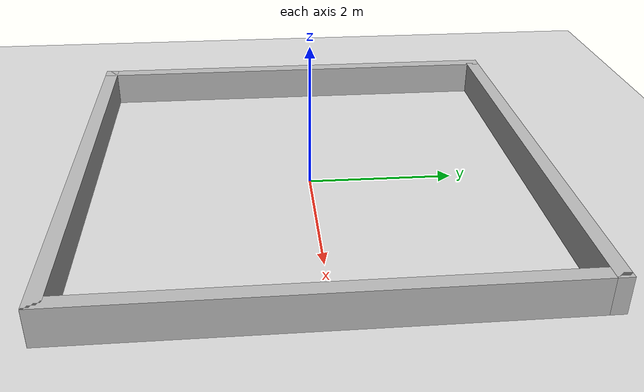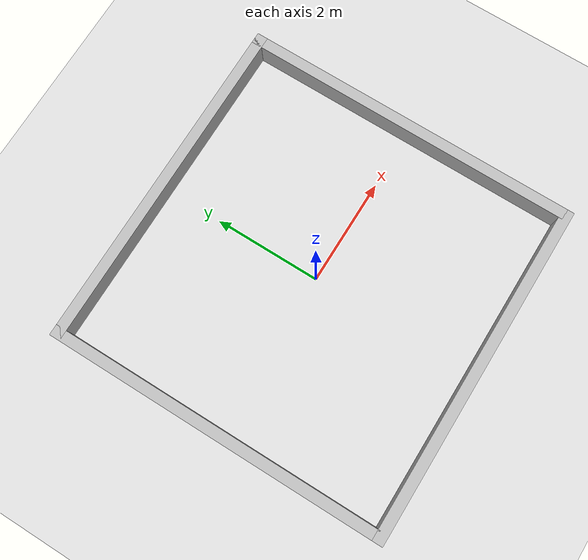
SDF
<?xml version="1.0" ?>
<!-- SPDX-License-Identifier: Apache-2.0
     Clean Square Room World for OOMWOO Robot Vacuum
     A 6.0 x 6.0 m obstacle-free room enclosed by 4 walls.
-->
<sdf version="1.8">
  <world name="default">
    <gravity>0 0 -9.81</gravity>

    <physics name="1ms" type="dart">
      <max_step_size>0.001</max_step_size>
      <real_time_factor>1.0</real_time_factor>
      <dart>
        <collision_detector>bullet</collision_detector>
      </dart>
    </physics>

    <plugin
      filename="gz-sim-physics-system"
      name="gz::sim::systems::Physics">
    </plugin>
    <plugin
      filename="gz-sim-sensors-system"
      name="gz::sim::systems::Sensors">
      <render_engine>ogre2</render_engine>
    </plugin>
    <plugin
      filename="gz-sim-contact-system"
      name="gz::sim::systems::Contact">
    </plugin>
    <plugin
      filename="gz-sim-user-commands-system"
      name="gz::sim::systems::UserCommands">
    </plugin>
    <plugin
      filename="gz-sim-scene-broadcaster-system"
      name="gz::sim::systems::SceneBroadcaster">
    </plugin>

    <scene>
      <ambient>0.4 0.4 0.4</ambient>
      <background>0.7 0.7 0.7</background>
    </scene>

    <light type="directional" name="sun">
      <cast_shadows>false</cast_shadows>
      <pose>0 0 10 0 0 0</pose>
      <diffuse>0.9 0.9 0.9 1</diffuse>
      <direction>-0.5 0.1 -0.9</direction>
    </light>

    <gui fullscreen="0">
      <camera name="user_camera">
        <pose>0.0 -4.5 4.5 0.0 0.75 1.5708</pose>
        <view_controller>orbit</view_controller>
      </camera>
    </gui>

    <model name="ground_plane">
      <static>true</static>
      <link name="link">
        <collision name="collision">
          <geometry><plane><normal>0 0 1</normal><size>20 20</size></plane></geometry>
        </collision>
        <visual name="visual">
          <geometry><plane><normal>0 0 1</normal><size>20 20</size></plane></geometry>
          <material>
            <ambient>0.85 0.85 0.85 1</ambient>
            <diffuse>0.85 0.85 0.85 1</diffuse>
            <specular>0.2 0.2 0.2 1</specular>
          </material>
        </visual>
      </link>
    </model>

    <!-- Outer Walls (6.0 m x 6.0 m interior space, centered at 0,0) -->
    <!-- North Wall -->
    <model name="wall_north">
      <static>true</static>
      <pose>0 3.1 0.25 0 0 0</pose>
      <link name="link">
        <collision name="c"><geometry><box><size>6.4 0.2 0.5</size></box></geometry></collision>
        <visual name="v"><geometry><box><size>6.4 0.2 0.5</size></box></geometry></visual>
      </link>
    </model>
    <!-- South Wall -->
    <model name="wall_south">
      <static>true</static>
      <pose>0 -3.1 0.25 0 0 0</pose>
      <link name="link">
        <collision name="c"><geometry><box><size>6.4 0.2 0.5</size></box></geometry></collision>
        <visual name="v"><geometry><box><size>6.4 0.2 0.5</size></box></geometry></visual>
      </link>
    </model>
    <!-- East Wall -->
    <model name="wall_east">
      <static>true</static>
      <pose>3.1 0 0.25 0 0 1.5708</pose>
      <link name="link">
        <collision name="c"><geometry><box><size>6.4 0.2 0.5</size></box></geometry></collision>
        <visual name="v"><geometry><box><size>6.4 0.2 0.5</size></box></geometry></visual>
      </link>
    </model>
    <!-- West Wall -->
    <model name="wall_west">
      <static>true</static>
      <pose>-3.1 0 0.25 0 0 1.5708</pose>
      <link name="link">
        <collision name="c"><geometry><box><size>6.4 0.2 0.5</size></box></geometry></collision>
        <visual name="v"><geometry><box><size>6.4 0.2 0.5</size></box></geometry></visual>
      </link>
    </model>

  </world>
</sdf>
